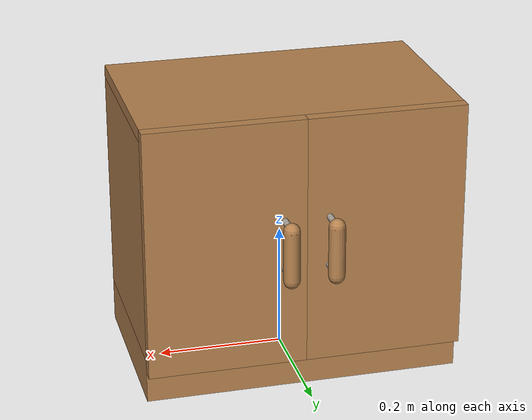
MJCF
<?xml version="1.0" encoding="utf-8"?>

<mujoco model="shelf">
    <asset>
        <texture file="../textures/steel-brushed.png" type="cube" name="steel" />
        <texture file="../textures/light-wood.png" type="cube" name="light-wood" />
        <texture file="../textures/dark-wood.png" type="cube" name="dark-wood" />
        <material name="MatSteel" texture="steel" specular="1" shininess="0.3" rgba="0.9 0.9 0.9 1" />
        <material name="MatLightWood" texture="light-wood" texrepeat="3 3" specular="0.4" shininess="0.1" />
        <material name="MatDarkWood" texture="dark-wood" texrepeat="3 3" specular="0.4" shininess="0.1" />
    </asset>

    <worldbody>
        <body>
            <body name="object" pos="0 0 0.25">
                <inertial pos="0 0 0" mass="5.0" diaginertia="0.03417 0.025633 0.028333"
                    />

                <!-- Base -->
                <geom name="geom_base"
                    pos="0 0 -0.215" size="0.25 0.15 0.035" type="box"
                    group="0" friction="1 1 1"
                    rgba="0 0 0 0"
                    />
                <geom name="geom_base_visual"
                    pos="0 0 -0.215" size="0.25 0.15 0.035" type="box"
                    material="MatLightWood"
                    group="1" contype="0" conaffinity="0"
                    />

                <!-- Top -->
                <geom name="geom_top"
                    pos="0 0 0.19" size="0.25 0.15 0.01" type="box"
                    group="0" friction="1 1 1"
                    rgba="0 0 0 0"
                    />
                <geom name="geom_top_visual"
                    pos="0 0 0.19" size="0.25 0.15 0.01" type="box"
                    material="MatLightWood"
                    group="1" contype="0" conaffinity="0"
                    />

                <!-- Back -->
                <geom name="geom_back"
                    pos="0 -0.14 0" size="0.23 0.01 0.18" type="box"
                    group="0" friction="1 1 1"
                    rgba="0 0 0 0"
                    />
                <geom name="geom_back_visual"
                    pos="0 -0.14 0" size="0.23 0.01 0.18" type="box"
                    material="MatLightWood"
                    group="1" contype="0" conaffinity="0"
                    />

                <!-- Sides -->
                <geom name="geom_left_side"
                    pos="-0.24 0 0" size="0.01 0.15 0.18" type="box"
                    group="0" friction="1 1 1"
                    rgba="0 0 0 0"
                    />
                <geom name="geom_left_side_visual"
                    pos="-0.24 0 0" size="0.01 0.15 0.18" type="box"
                    material="MatLightWood"
                    group="1" contype="0" conaffinity="0"
                    />

                <geom name="geom_right_side"
                    pos="0.24 0 0" size="0.01 0.15 0.18" type="box"
                    group="0" friction="1 1 1"
                    rgba="0 0 0 0"
                    />
                <geom name="geom_right_side_visual"
                    pos="0.24 0 0" size="0.01 0.15 0.18" type="box"
                    material="MatLightWood"
                    group="1" contype="0" conaffinity="0"
                    />

                <!-- Left door -->
                <body name="left_door" pos="0.125 0.16 0.0">
                    <joint name="left_joint"
                        type="hinge" pos = "0.125 -0.01 0" axis="0 0 -1" limited="true" range="0 3.1416"
                        damping="0.05" stiffness="1.0" frictionloss="0.3" springref="1.8"
                        ref="0"
                        />
                    <inertial pos="0 0 0" mass="0.1" diaginertia="0.0013467 0.001854 0.0005342"
                        />
                    <geom name="geom_left_door"
                        size="0.125 0.01 0.2" type="box"
                        pos="0 0 0"
                        group="0" friction="1 1 1"
                        rgba="0 0 0 0"
                        />
                    <geom name="geom_left_door_visual"
                        size="0.125 0.01 0.2" type="box"
                        pos="0 0 0"
                        group="1" contype="0" conaffinity="0"
                        material="MatDarkWood"
                        />

                    <body name="left_handle" pos="-0.09 0.01 0" quat="0 0 0.707107 0.707107">
                        <geom name="geom_left_top_root1"
                            fromto="0  0.04 0  0  0.04 0.04" size="0.005" type="box"
                            group="0" friction="1 1 1"
                            rgba="0 0 0 0"
                            />
                        <geom name="geom_left_top_root2"
                            fromto="0 -0.04 0    0 -0.04 0.04" size="0.005" type="box"
                            group="0" friction="1 1 1"
                            rgba="0 0 0 0"
                            />
                        <geom name="geom_left_top_handle"
                            fromto="0 -0.04 0.04 0  0.04 0.04" size="0.013" type="box"
                            group="0" friction="1 1 1"
                            rgba="0 0 0 0"
                            />
                        <geom name="geom_left_top_root1_visual"
                            fromto="0  0.04 0  0  0.04 0.04" size="0.005" type="capsule"
                            group="1" contype="0" conaffinity="0"
                            material="MatSteel"
                            />
                        <geom name="geom_left_top_root2_visual"
                            fromto="0 -0.04 0    0 -0.04 0.04" size="0.005" type="capsule"
                            group="1" contype="0" conaffinity="0"
                            material="MatSteel"
                            />
                        <geom name="geom_left_top_handle_visual"
                            fromto="0 -0.04 0.04 0  0.04 0.04" size="0.013" type="capsule"
                            group="1" contype="0" conaffinity="0"
                            material="MatLightWood"
                            />
                        <site name="left_handle" pos="0.125 -0.10 0" size="0.02" rgba="0 0 1 0" />
                    </body>
                </body>

                <!-- Right door -->
                <body name="right_door" pos="-0.125 0.16 0.0">
                    <joint name="right_joint"
                        type="hinge" pos = "-0.125 -0.01 0" axis="0 0 1" limited="true" range="0 3.1416"
                        damping="0.05" stiffness="1.0" frictionloss="0.3" springref="1.8"
                        ref="0"
                        />
                    <inertial pos="0 0 0" mass="0.1" diaginertia="0.0003467 0.0024167 0.0020967"
                        />
                    <geom name="geom_right_door"
                        size="0.125 0.01 0.2" type="box"
                        pos="0 0 0"
                        group="0" friction="1 1 1"
                        rgba="0 0 0 0"
                        />
                    <geom name="geom_right_door_visual"
                        size="0.125 0.01 0.2" type="box"
                        pos="0 0 0"
                        group="1" contype="0" conaffinity="0"
                        material="MatDarkWood"
                        />

                    <body name="right_handle" pos="0.09 0.01 0" quat="0 0 0.707107 0.707107">
                        <geom name="geom_right_top_root1"
                            fromto="0  0.04 0  0  0.04 0.04" size="0.005" type="box"
                            group="0" friction="1 1 1"
                            rgba="0 0 0 0"
                            />
                        <geom name="geom_right_top_root2"
                            fromto="0 -0.04 0    0 -0.04 0.04" size="0.005" type="box"
                            group="0" friction="1 1 1"
                            rgba="0 0 0 0"
                            />
                        <geom name="geom_right_top_handle"
                            fromto="0 -0.04 0.04 0  0.04 0.04" size="0.013" type="box"
                            group="0" friction="1 1 1"
                            rgba="0 0 0 0"
                            />
                        <geom name="geom_right_top_root1_visual"
                            fromto="0  0.04 0  0  0.04 0.04" size="0.005" type="capsule"
                            group="1" contype="0" conaffinity="0"
                            material="MatSteel"
                            />
                        <geom name="geom_right_top_root2_visual"
                            fromto="0 -0.04 0    0 -0.04 0.04" size="0.005" type="capsule"
                            group="1" contype="0" conaffinity="0"
                            material="MatSteel"
                            />
                        <geom name="geom_right_top_handle_visual"
                            fromto="0 -0.04 0.04 0  0.04 0.04" size="0.013" type="capsule"
                            group="1" contype="0" conaffinity="0"
                            material="MatLightWood"
                            />
                        <site name="right_handle" pos="0.125 -0.10 0" size="0.02" rgba="0 0 1 0" />
                    </body>
                </body>
            </body>
            <site name="bottom_site" pos="0 0 -0.0207" rgba="0 0 0 0" size="0.005"/>
            <site name="top_site" pos="0 0 0.007" rgba="0 0 0 0" size="0.005"/>
            <site name="horizontal_radius_site" pos="0 0 0" rgba="0 0 0 0" size="0.003"/>
        </body>

    </worldbody>
</mujoco>
